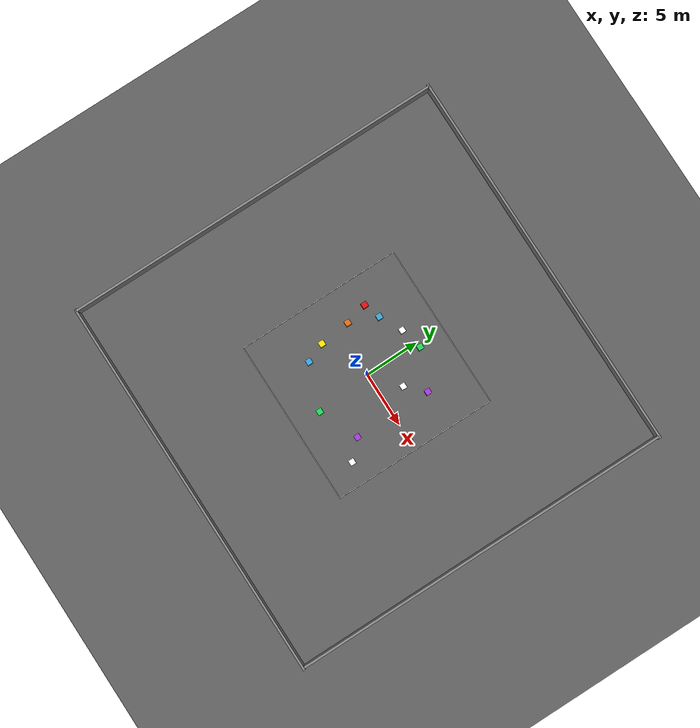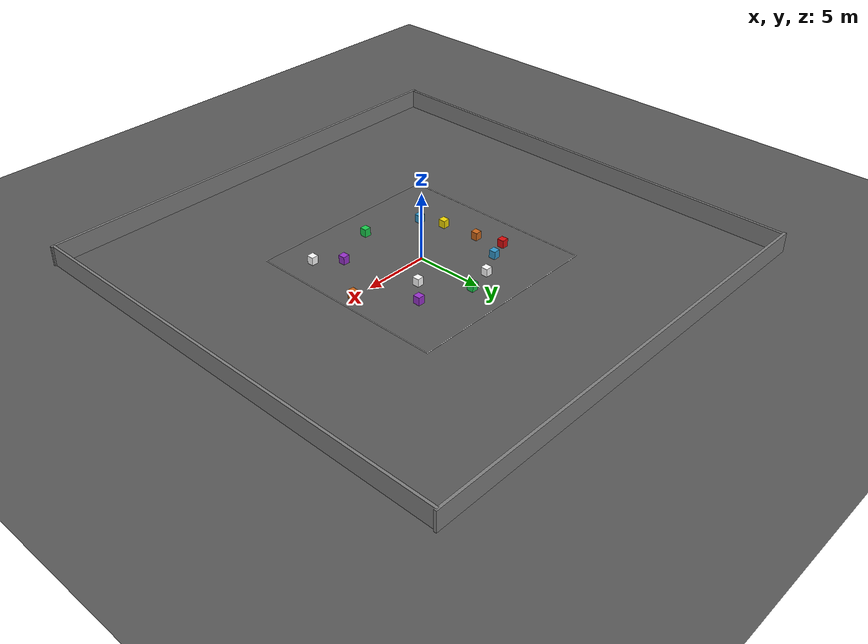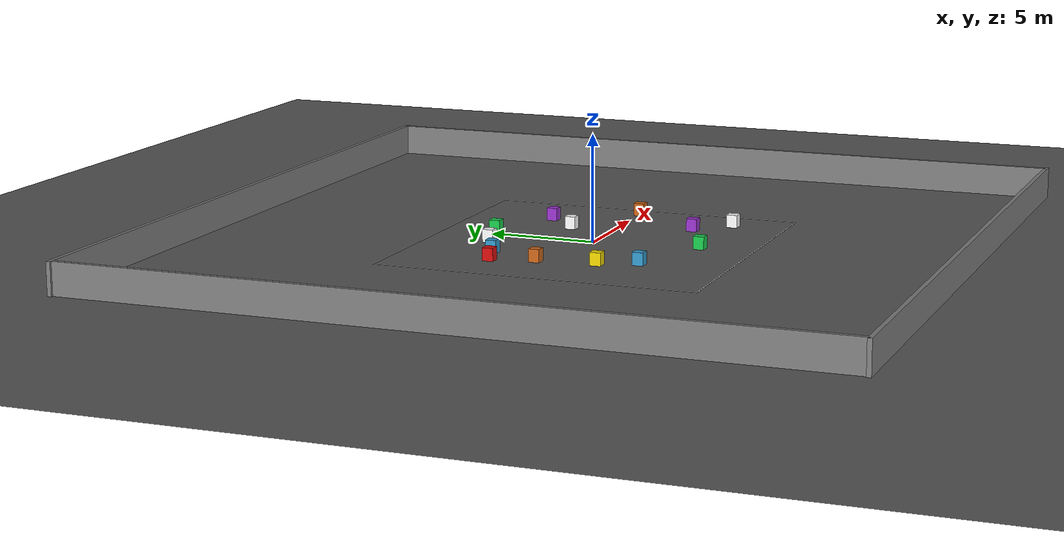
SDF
<?xml version="1.0" ?>
<!--
  discovery_15x15.sdf
  Open flat arena with a 15 x 15 m white boundary rectangle drawn on the ground.
  No surrounding walls — designed for autonomous-discovery tasks.
-->
<sdf version="1.9">
  <world name="discovery_15x15">

    <!-- ── Physics ──────────────────────────────────────────────────── -->
    <physics name="default_physics" default="true" type="ode">
      <max_step_size>0.001</max_step_size>
      <real_time_factor>1.0</real_time_factor>
      <real_time_update_rate>1000</real_time_update_rate>
    </physics>

    <!-- ── Required Gazebo Sim system plugins ───────────────────────── -->
    <plugin filename="gz-sim-physics-system"
            name="gz::sim::systems::Physics"/>
    <plugin filename="gz-sim-user-commands-system"
            name="gz::sim::systems::UserCommands"/>
    <plugin filename="gz-sim-scene-broadcaster-system"
            name="gz::sim::systems::SceneBroadcaster"/>
    <plugin filename="gz-sim-sensors-system"
            name="gz::sim::systems::Sensors">
      <render_engine>ogre</render_engine>
    </plugin>
    <plugin filename="gz-sim-imu-system"
            name="gz::sim::systems::Imu"/>
    <plugin filename="gz-sim-contact-system"
            name="gz::sim::systems::Contact"/>

    <!-- ── Lighting ─────────────────────────────────────────────────── -->
    <light name="sun" type="directional">
      <cast_shadows>true</cast_shadows>
      <pose>0 0 10 0 0 0</pose>
      <diffuse>0.85 0.85 0.85 1</diffuse>
      <specular>0.2  0.2  0.2  1</specular>
      <direction>-0.5 0.1 -0.9</direction>
      <attenuation>
        <range>1000</range>
        <constant>0.9</constant>
        <linear>0.01</linear>
        <quadratic>0.001</quadratic>
      </attenuation>
    </light>

    <!-- ── Ground plane (dark grey, 100 × 100 m) ────────────────────── -->
    <model name="ground_plane">
      <static>true</static>
      <link name="link">
        <collision name="collision">
          <geometry>
            <plane>
              <normal>0 0 1</normal>
              <size>100 100</size>
            </plane>
          </geometry>
          <surface>
            <friction>
              <ode>
                <mu>0.4</mu>          <!-- 主摩擦系数，草地约 0.3-0.5 -->
                <mu2>0.4</mu2>        <!-- 横向摩擦 -->
                <fdir1>1 0 0</fdir1>  <!-- 摩擦方向（各向异性效果） -->
                <slip1>0</slip1>   <!-- 纵向滑移 (0=无滑移) -->
                <slip2>0</slip2>   <!-- 横向滑移 -->
              </ode>
            </friction>
          </surface>
        </collision>
        <visual name="visual">
          <geometry>
            <plane>
              <normal>0 0 1</normal>
              <size>100 100</size>
            </plane>
          </geometry>
          <material>
            <ambient>0.35 0.35 0.35 1</ambient>
            <diffuse>0.35 0.35 0.35 1</diffuse>
            <specular>0.05 0.05 0.05 1</specular>
          </material>
        </visual>
      </link>
    </model>

    <!-- Bottom line  (y = -7.5) -->
    <model name="line_bottom">
      <static>true</static>
      <pose>0 -7.5 0.0015 0 0 0</pose>
      <link name="link">
        <visual name="visual">
          <geometry><box><size>15.05 0.05 0.003</size></box></geometry>
          <material>
            <ambient>1 1 1 1</ambient>
            <diffuse>1 1 1 1</diffuse>
            <specular>0.8 0.8 0.8 1</specular>
            <emissive>0.2 0.2 0.2 1</emissive>
          </material>
        </visual>
      </link>
    </model>

    <!-- Top line  (y = +7.5) -->
    <model name="line_top">
      <static>true</static>
      <pose>0 7.5 0.0015 0 0 0</pose>
      <link name="link">
        <visual name="visual">
          <geometry><box><size>15.05 0.05 0.003</size></box></geometry>
          <material>
            <ambient>1 1 1 1</ambient>
            <diffuse>1 1 1 1</diffuse>
            <specular>0.8 0.8 0.8 1</specular>
            <emissive>0.2 0.2 0.2 1</emissive>
          </material>
        </visual>
      </link>
    </model>

    <!-- Left line  (x = -7.5) -->
    <model name="line_left">
      <static>true</static>
      <pose>-7.5 0 0.0015 0 0 0</pose>
      <link name="link">
        <visual name="visual">
          <geometry><box><size>0.05 15.05 0.003</size></box></geometry>
          <material>
            <ambient>1 1 1 1</ambient>
            <diffuse>1 1 1 1</diffuse>
            <specular>0.8 0.8 0.8 1</specular>
            <emissive>0.2 0.2 0.2 1</emissive>
          </material>
        </visual>
      </link>
    </model>

    <!-- Right line  (x = +7.5) -->
    <model name="line_right">
      <static>true</static>
      <pose>7.5 0 0.0015 0 0 0</pose>
      <link name="link">
        <visual name="visual">
          <geometry><box><size>0.05 15.05 0.003</size></box></geometry>
          <material>
            <ambient>1 1 1 1</ambient>
            <diffuse>1 1 1 1</diffuse>
            <specular>0.8 0.8 0.8 1</specular>
            <emissive>0.2 0.2 0.2 1</emissive>
          </material>
        </visual>
      </link>
    </model>

    <model name="ob_w">
      <static>true</static>
      <pose>-4.5 1.0 0.3 0 0 0</pose>
      <link name="link">
        <collision name="collision">
          <geometry><box><size>0.5 0.5 0.6</size></box></geometry>
        </collision>
        <visual name="visual">
          <geometry><box><size>0.5 0.5 0.6</size></box></geometry>
          <material>
            <ambient>0.8 0.4 0.1 1</ambient>
            <diffuse>0.8 0.4 0.1 1</diffuse>
          </material>
        </visual>
      </link>
    </model>

    <model name="ob_nw">
      <static>true</static>
      <pose>-3.5 3.5 0.3 0 0 0</pose>
      <link name="link">
        <collision name="collision">
          <geometry><box><size>0.5 0.5 0.6</size></box></geometry>
        </collision>
        <visual name="visual">
          <geometry><box><size>0.5 0.5 0.6</size></box></geometry>
          <material>
            <ambient>0.2 0.6 0.8 1</ambient>
            <diffuse>0.2 0.6 0.8 1</diffuse>
          </material>
        </visual>
      </link>
    </model>

    <model name="ob_sw">
      <static>true</static>
      <pose>-3.5 -3.5 0.3 0 0 0</pose>
      <link name="link">
        <collision name="collision">
          <geometry><box><size>0.5 0.5 0.6</size></box></geometry>
        </collision>
        <visual name="visual">
          <geometry><box><size>0.5 0.5 0.6</size></box></geometry>
          <material>
            <ambient>0.2 0.6 0.8 1</ambient>
            <diffuse>0.2 0.6 0.8 1</diffuse>
          </material>
        </visual>
      </link>
    </model>

    <model name="ob_n2">
      <static>true</static>
      <pose>0.5 5.0 0.3 0 0 0</pose>
      <link name="link">
        <collision name="collision">
          <geometry><box><size>0.5 0.5 0.6</size></box></geometry>
        </collision>
        <visual name="visual">
          <geometry><box><size>0.5 0.5 0.6</size></box></geometry>
          <material>
            <ambient>0.1 0.8 0.3 1</ambient>
            <diffuse>0.1 0.8 0.3 1</diffuse>
          </material>
        </visual>
      </link>
    </model>

    <model name="ob_s2">
      <static>true</static>
      <pose>0.5 -5.0 0.3 0 0 0</pose>
      <link name="link">
        <collision name="collision">
          <geometry><box><size>0.5 0.5 0.6</size></box></geometry>
        </collision>
        <visual name="visual">
          <geometry><box><size>0.5 0.5 0.6</size></box></geometry>
          <material>
            <ambient>0.1 0.8 0.3 1</ambient>
            <diffuse>0.1 0.8 0.3 1</diffuse>
          </material>
        </visual>
      </link>
    </model>

    <model name="ob_ne">
      <static>true</static>
      <pose>4.0 3.5 0.3 0 0 0</pose>
      <link name="link">
        <collision name="collision">
          <geometry><box><size>0.5 0.5 0.6</size></box></geometry>
        </collision>
        <visual name="visual">
          <geometry><box><size>0.5 0.5 0.6</size></box></geometry>
          <material>
            <ambient>0.6 0.2 0.8 1</ambient>
            <diffuse>0.6 0.2 0.8 1</diffuse>
          </material>
        </visual>
      </link>
    </model>

    <model name="ob_se">
      <static>true</static>
      <pose>4.0 -3.5 0.3 0 0 0</pose>
      <link name="link">
        <collision name="collision">
          <geometry><box><size>0.5 0.5 0.6</size></box></geometry>
        </collision>
        <visual name="visual">
          <geometry><box><size>0.5 0.5 0.6</size></box></geometry>
          <material>
            <ambient>0.6 0.2 0.8 1</ambient>
            <diffuse>0.6 0.2 0.8 1</diffuse>
          </material>
        </visual>
      </link>
    </model>

    <model name="ob_e">
      <static>true</static>
      <pose>6.5 0.0 0.3 0 0 0</pose>
      <link name="link">
        <collision name="collision">
          <geometry><box><size>0.5 0.5 0.6</size></box></geometry>
        </collision>
        <visual name="visual">
          <geometry><box><size>0.5 0.5 0.6</size></box></geometry>
          <material>
            <ambient>0.8 0.4 0.1 1</ambient>
            <diffuse>0.8 0.4 0.1 1</diffuse>
          </material>
        </visual>
      </link>
    </model>

    <!-- 测试用彩色障碍物：用于验证 colour_detector 识别 yellow / red ──────── -->

    <!-- Yellow obstacle  at (-4.19, -1.77) — 颜色对应 HSV H≈30°，colour_detector 黄色范围 -->
    <model name="ob_yellow_test">
      <static>true</static>
      <pose>-4.19 -1.77 0.3 0 0 0</pose>
      <link name="link">
        <collision name="collision">
          <geometry><box><size>0.5 0.5 0.6</size></box></geometry>
        </collision>
        <visual name="visual">
          <geometry><box><size>0.5 0.5 0.6</size></box></geometry>
          <material>
            <ambient>0.95 0.85 0.0 1</ambient>
            <diffuse>0.95 0.85 0.0 1</diffuse>
            <specular>0.1  0.1  0.0 1</specular>
          </material>
        </visual>
      </link>
    </model>

    <!-- Red obstacle  at (-5.0, 3.0) — 颜色对应 HSV H≈0°，colour_detector 红色范围 -->
    <model name="ob_red_test">
      <static>true</static>
      <pose>-5.0 3.0 0.3 0 0 0</pose>
      <link name="link">
        <collision name="collision">
          <geometry><box><size>0.5 0.5 0.6</size></box></geometry>
        </collision>
        <visual name="visual">
          <geometry><box><size>0.5 0.5 0.6</size></box></geometry>
          <material>
            <ambient>0.85 0.05 0.05 1</ambient>
            <diffuse>0.85 0.05 0.05 1</diffuse>
            <specular>0.1  0.0  0.0  1</specular>
          </material>
        </visual>
      </link>
    </model>

    <!-- Alpha obstacle  at (2.5, 2.0) -->
    <model name="ob_alpha">
      <static>true</static>
      <pose>2.5 2.0 0.3 0 0 0</pose>
      <link name="link">
        <collision name="collision">
          <geometry><box><size>0.5 0.5 0.6</size></box></geometry>
        </collision>
        <visual name="visual">
          <geometry><box><size>0.5 0.5 0.6</size></box></geometry>
          <!-- 纯白底色 + emissive 自发光，确保 ogre 渲染下 HSV value >= 200 -->
          <material>
            <ambient>1.0 1.0 1.0 1</ambient>
            <diffuse>1.0 1.0 1.0 1</diffuse>
            <specular>0.3 0.3 0.3 1</specular>
            <emissive>0.5 0.5 0.5 1</emissive>
            <pbr>
              <metal>
                <albedo_map>file:///home/parallels/workspace/projects/auto4508-project-part3/src/auto_nav_part3/resource/greek_number/alpha.png</albedo_map>
                <metalness>0.0</metalness>
                <roughness>1.0</roughness>
              </metal>
            </pbr>
          </material>
        </visual>
      </link>
    </model>

    <!-- Psi obstacle  at (-1.5, 4.5) -->
    <model name="ob_psi">
      <static>true</static>
      <pose>-1.5 4.5 0.3 0 0 0</pose>
      <link name="link">
        <collision name="collision">
          <geometry><box><size>0.5 0.5 0.6</size></box></geometry>
        </collision>
        <visual name="visual">
          <geometry><box><size>0.5 0.5 0.6</size></box></geometry>
          <!-- 纯白底色 + emissive 自发光，确保 ogre 渲染下 HSV value >= 200 -->
          <material>
            <ambient>1.0 1.0 1.0 1</ambient>
            <diffuse>1.0 1.0 1.0 1</diffuse>
            <specular>0.3 0.3 0.3 1</specular>
            <emissive>0.5 0.5 0.5 1</emissive>
            <pbr>
              <metal>
                <albedo_map>file:///home/parallels/workspace/projects/auto4508-project-part3/src/auto_nav_part3/resource/greek_number/psi.png</albedo_map>
                <metalness>0.0</metalness>
                <roughness>1.0</roughness>
              </metal>
            </pbr>
          </material>
        </visual>
      </link>
    </model>

    <!-- Delta obstacle  at (5.5, -5.0) -->
    <model name="ob_delta">
      <static>true</static>
      <pose>5.5 -5.0 0.3 0 0 0</pose>
      <link name="link">
        <collision name="collision">
          <geometry><box><size>0.5 0.5 0.6</size></box></geometry>
        </collision>
        <visual name="visual">
          <geometry><box><size>0.5 0.5 0.6</size></box></geometry>
          <!-- 纯白底色 + emissive 自发光，确保 ogre 渲染下 HSV value >= 200 -->
          <material>
            <ambient>1.0 1.0 1.0 1</ambient>
            <diffuse>1.0 1.0 1.0 1</diffuse>
            <specular>0.3 0.3 0.3 1</specular>
            <emissive>0.5 0.5 0.5 1</emissive>
            <pbr>
              <metal>
                <albedo_map>file:///home/parallels/workspace/projects/auto4508-project-part3/src/auto_nav_part3/resource/greek_number/delta.png</albedo_map>
                <metalness>0.0</metalness>
                <roughness>1.0</roughness>
              </metal>
            </pbr>
          </material>
        </visual>
      </link>
    </model>

    <!-- North wall  (y = +17.5) -->
    <model name="wall_north">
      <static>true</static>
      <pose>0 17.5 0.75 0 0 0</pose>
      <link name="link">
        <collision name="collision">
          <geometry><box><size>35.4 0.2 1.5</size></box></geometry>
        </collision>
        <visual name="visual">
          <geometry><box><size>35.4 0.2 1.5</size></box></geometry>
          <material>
            <ambient>0.5 0.5 0.5 1</ambient>
            <diffuse>0.5 0.5 0.5 1</diffuse>
            <specular>0.1 0.1 0.1 1</specular>
          </material>
        </visual>
      </link>
    </model>

    <!-- South wall  (y = -17.5) -->
    <model name="wall_south">
      <static>true</static>
      <pose>0 -17.5 0.75 0 0 0</pose>
      <link name="link">
        <collision name="collision">
          <geometry><box><size>35.4 0.2 1.5</size></box></geometry>
        </collision>
        <visual name="visual">
          <geometry><box><size>35.4 0.2 1.5</size></box></geometry>
          <material>
            <ambient>0.5 0.5 0.5 1</ambient>
            <diffuse>0.5 0.5 0.5 1</diffuse>
            <specular>0.1 0.1 0.1 1</specular>
          </material>
        </visual>
      </link>
    </model>

    <!-- East wall  (x = +17.5) -->
    <model name="wall_east">
      <static>true</static>
      <pose>17.5 0 0.75 0 0 0</pose>
      <link name="link">
        <collision name="collision">
          <geometry><box><size>0.2 35.0 1.5</size></box></geometry>
        </collision>
        <visual name="visual">
          <geometry><box><size>0.2 35.0 1.5</size></box></geometry>
          <material>
            <ambient>0.5 0.5 0.5 1</ambient>
            <diffuse>0.5 0.5 0.5 1</diffuse>
            <specular>0.1 0.1 0.1 1</specular>
          </material>
        </visual>
      </link>
    </model>

    <!-- West wall  (x = -17.5) -->
    <model name="wall_west">
      <static>true</static>
      <pose>-17.5 0 0.75 0 0 0</pose>
      <link name="link">
        <collision name="collision">
          <geometry><box><size>0.2 35.0 1.5</size></box></geometry>
        </collision>
        <visual name="visual">
          <geometry><box><size>0.2 35.0 1.5</size></box></geometry>
          <material>
            <ambient>0.5 0.5 0.5 1</ambient>
            <diffuse>0.5 0.5 0.5 1</diffuse>
            <specular>0.1 0.1 0.1 1</specular>
          </material>
        </visual>
      </link>
    </model>

    <!-- ── Initial GUI camera: top-down, north (+Y) up, east (+X) right ──── -->
    <!-- pitch=π/2 points camera straight down; yaw=π/2 rotates so +Y is up  perspective -->
    <gui fullscreen="0">
      <camera name="user_camera">
        <pose>0 0 20 0 1.5708 1.5708</pose>
        <view_controller>orbit</view_controller>
        <projection_type>orthographic</projection_type>
      </camera>
    </gui>

  </world>
</sdf>
